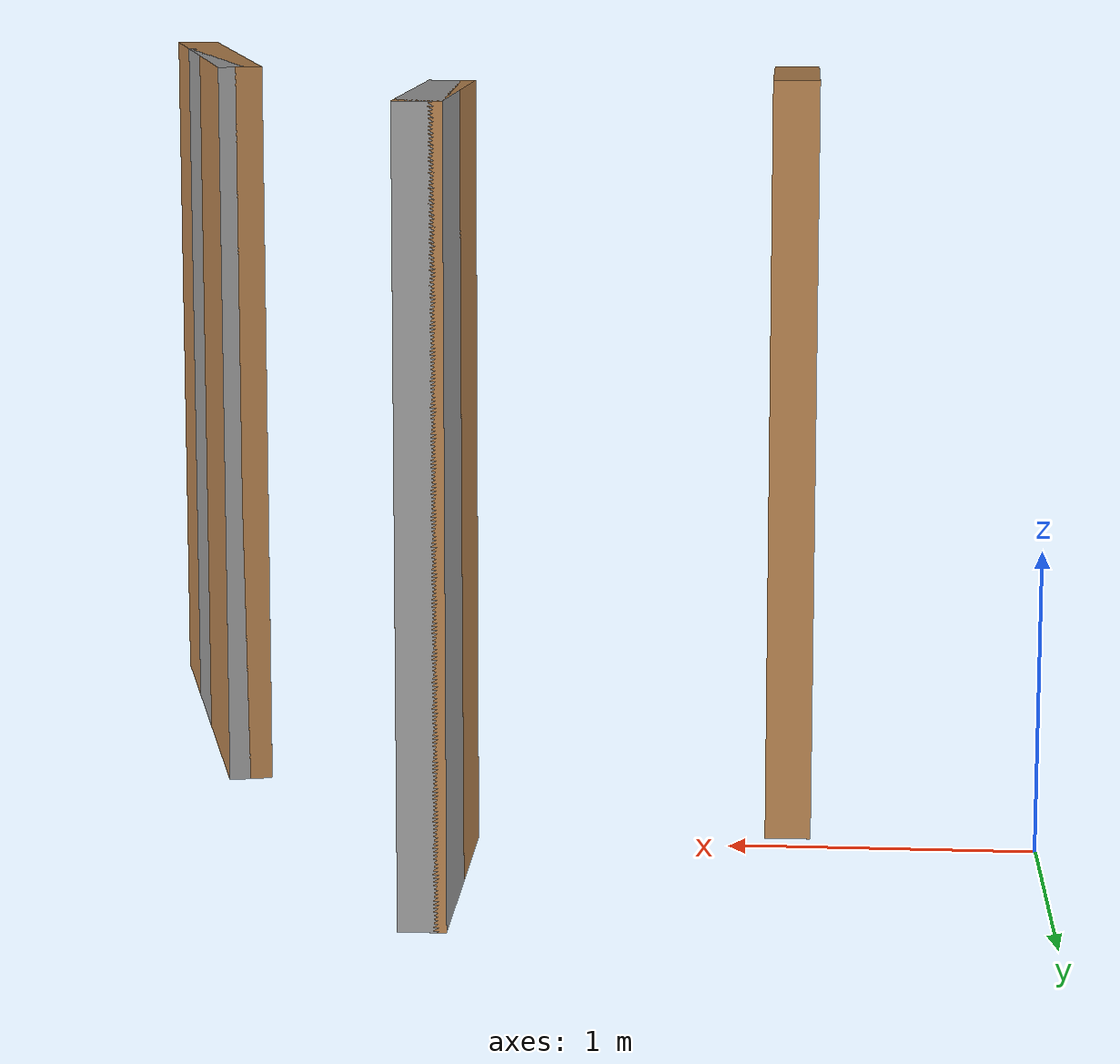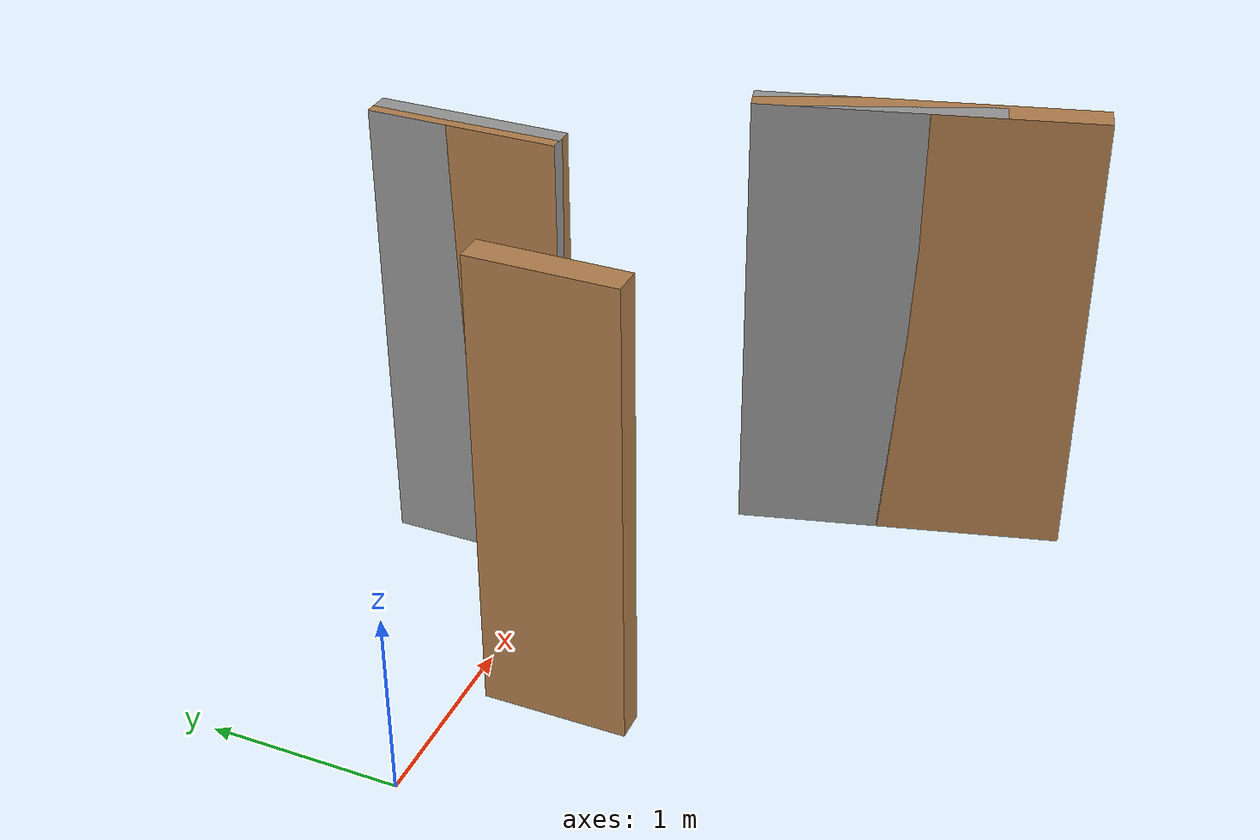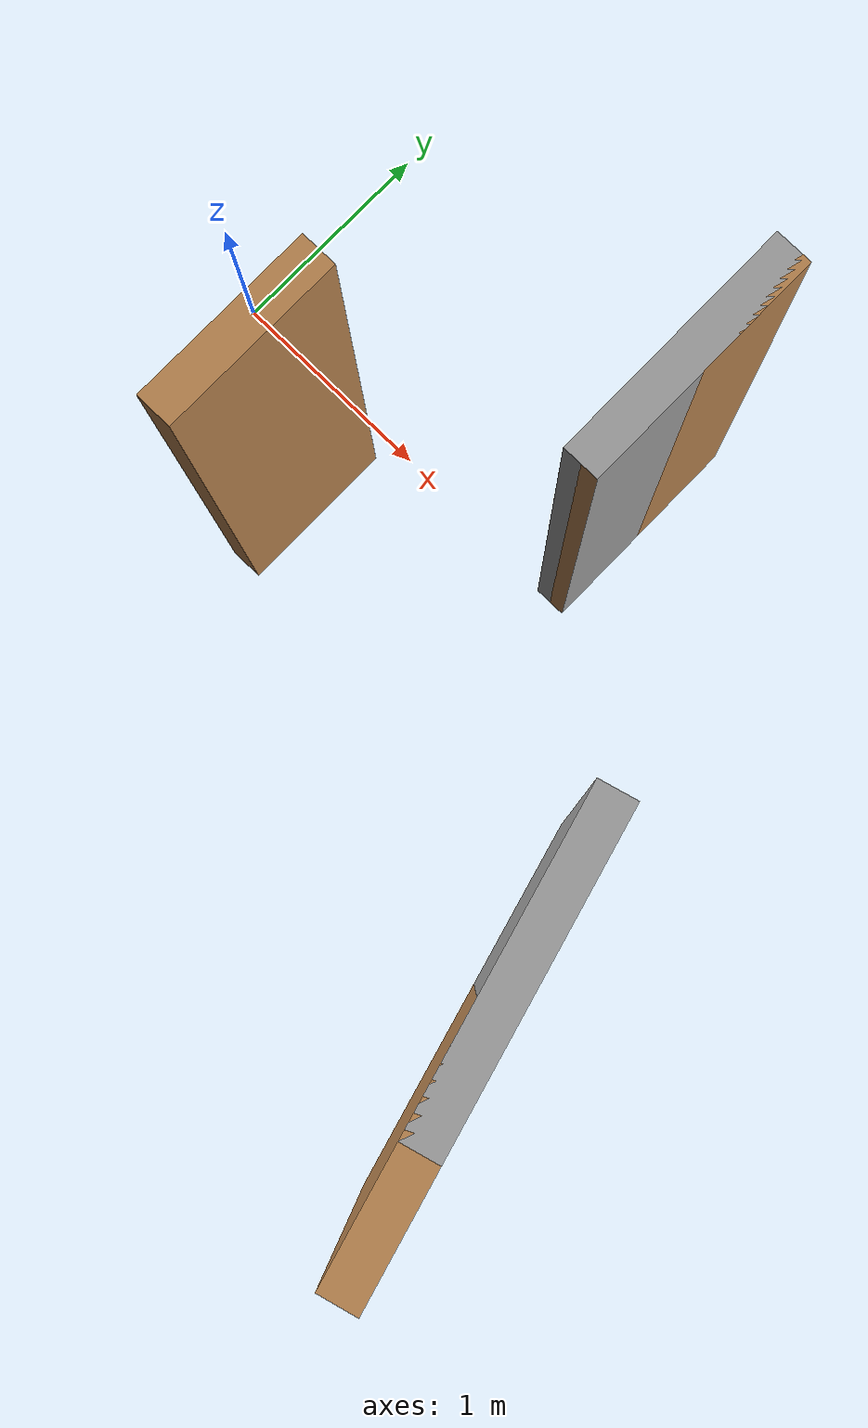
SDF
<?xml version='1.0'?>
<sdf version='1.6'>
  <model name='maze'>
    <pose frame=''>1.97781 -0.716678 0 0 -0 0</pose>
    <link name='Wall_0'>
      <collision name='Wall_0_Collision'>
        <geometry>
          <box>
            <size>0.75 0.15 2.5</size>
          </box>
        </geometry>
        <pose frame=''>0 0 1.25 0 -0 0</pose>
      </collision>
      <visual name='Wall_0_Visual'>
        <pose frame=''>0 0 1.25 0 -0 0</pose>
        <geometry>
          <box>
            <size>0.75 0.15 2.5</size>
          </box>
        </geometry>
        <material>
          <script>
            <uri>file://media/materials/scripts/gazebo.material</uri>
            <name>Gazebo/Wood</name>
          </script>
          <ambient>1 1 1 1</ambient>
        </material>
      </visual>
      <pose frame=''>-1.1711 0.241633 0 0 -0 1.5708</pose>
    </link>
    <link name='Wall_2'>
      <collision name='Wall_2_Collision'>
        <geometry>
          <box>
            <size>1 0.15 2.5</size>
          </box>
        </geometry>
        <pose frame=''>0 0 1.25 0 -0 0</pose>
      </collision>
      <visual name='Wall_2_Visual'>
        <pose frame=''>0 0 1.25 0 -0 0</pose>
        <geometry>
          <box>
            <size>1 0.15 2.5</size>
          </box>
        </geometry>
        <material>
          <script>
            <uri>file://media/materials/scripts/gazebo.material</uri>
            <name>Gazebo/Grey</name>
          </script>
          <ambient>1 1 1 1</ambient>
        </material>
      </visual>
      <pose frame=''>-0.076069 1.18791 0 0 -0 1.5708</pose>
    </link>
    <link name='Wall_3'>
      <collision name='Wall_3_Collision'>
        <geometry>
          <box>
            <size>1 0.15 2.5</size>
          </box>
        </geometry>
        <pose frame=''>0 0 1.25 0 -0 0</pose>
      </collision>
      <visual name='Wall_3_Visual'>
        <pose frame=''>0 0 1.25 0 -0 0</pose>
        <geometry>
          <box>
            <size>1 0.15 2.5</size>
          </box>
        </geometry>
        <material>
          <script>
            <uri>file://media/materials/scripts/gazebo.material</uri>
            <name>Gazebo/Wood</name>
          </script>
          <ambient>1 1 1 1</ambient>
        </material>
      </visual>
      <pose frame=''>-0.076069 1.18791 0 0 0 -1.5708</pose>
    </link>
    <link name='Wall_5'>
      <collision name='Wall_5_Collision'>
        <geometry>
          <box>
            <size>1.25 0.15 2.5</size>
          </box>
        </geometry>
        <pose frame=''>0 0 1.25 0 -0 0</pose>
      </collision>
      <visual name='Wall_5_Visual'>
        <pose frame=''>0 0 1.25 0 -0 0</pose>
        <geometry>
          <box>
            <size>1.25 0.15 2.5</size>
          </box>
        </geometry>
        <material>
          <script>
            <uri>file://media/materials/scripts/gazebo.material</uri>
            <name>Gazebo/Grey</name>
          </script>
          <ambient>1 1 1 1</ambient>
        </material>
      </visual>
      <pose frame=''>0.882483 -0.581828 0 0 -0 1.8326</pose>
    </link>
    <link name='Wall_6'>
      <collision name='Wall_6_Collision'>
        <geometry>
          <box>
            <size>1.75 0.15 2.5</size>
          </box>
        </geometry>
        <pose frame=''>0 0 1.25 0 -0 0</pose>
      </collision>
      <visual name='Wall_6_Visual'>
        <pose frame=''>0 0 1.25 0 -0 0</pose>
        <geometry>
          <box>
            <size>1.75 0.15 2.5</size>
          </box>
        </geometry>
        <material>
          <script>
            <uri>file://media/materials/scripts/gazebo.material</uri>
            <name>Gazebo/Wood</name>
          </script>
          <ambient>1 1 1 1</ambient>
        </material>
      </visual>
      <pose frame=''>0.947188 -0.823309 0 0 0 -1.309</pose>
    </link>
    <static>1</static>
  </model>
</sdf>
